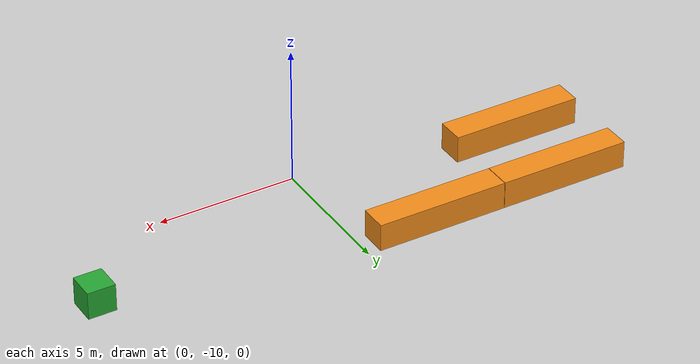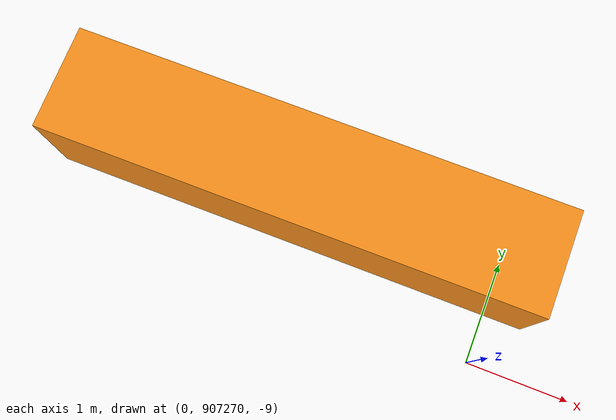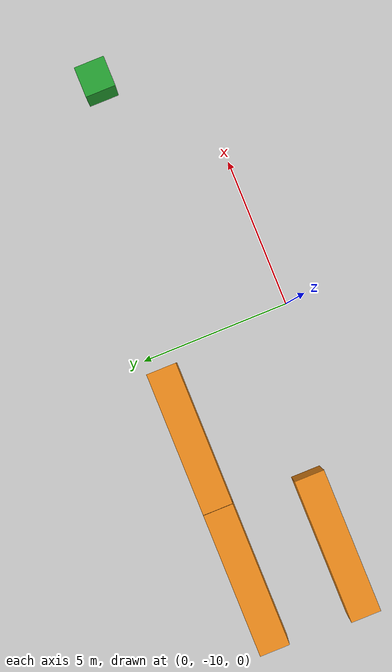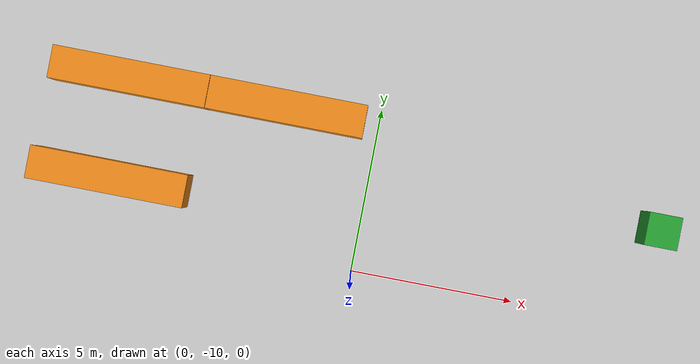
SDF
<sdf version="1.7">
 <world name="default">
  <light name="sun" type="directional">
   <pose>0 0 10 0 -0 0</pose>
   <diffuse>0.8 0.8 0.8 1</diffuse>
   <specular>0.2 0.2 0.2 1</specular>
   <attenuation>
    <range>1000</range>
    <constant>0.9</constant>
    <linear>0.01</linear>
    <quadratic>0.001</quadratic>
   </attenuation>
   <direction>-0.5 0.1 -0.9</direction>
   <spot><inner_angle>0</inner_angle><outer_angle>0</outer_angle><falloff>0</falloff></spot>
  </light>
  <model name="ground_plane">
   <static>1</static>
   <link name="link">
    <collision name="collision">
     <geometry><plane><normal>0 0 1</normal><size>100 100</size></plane></geometry>
     <surface>
      <contact><collide_bitmask>65535</collide_bitmask></contact>
      <friction><ode><mu>100</mu><mu2>50</mu2></ode></friction>
     </surface>
    </collision>
    <visual name="visual">
     <cast_shadows>0</cast_shadows>
     <geometry><plane><normal>0 0 1</normal><size>100 100</size></plane></geometry>
     <material>
      <script><uri>file://media/materials/scripts/gazebo.material</uri><name>Gazebo/Grey</name></script>
     </material>
    </visual>
   </link>
  </model>
  <gravity>0 0 -9.8</gravity>
  <magnetic_field>6e-06 2.3e-05 -4.2e-05</magnetic_field>
  <atmosphere type="adiabatic"/>
  <physics type="ode">
   <max_step_size>0.001</max_step_size>
   <real_time_factor>1</real_time_factor>
   <real_time_update_rate>1000</real_time_update_rate>
  </physics>
  <scene><ambient>0.4 0.4 0.4 1</ambient><background>0.7 0.7 0.7 1</background><shadows>1</shadows></scene>
  <spherical_coordinates>
   <surface_model>EARTH_WGS84</surface_model>
   <latitude_deg>0</latitude_deg>
   <longitude_deg>0</longitude_deg>
   <elevation>0</elevation>
   <heading_deg>0</heading_deg>
  </spherical_coordinates>
  <model name="unit_box">
   <static>1</static>
   <pose>8.88672 -6.98866 0.499995 0 1e-05 0</pose>
   <link name="link">
    <inertial>
     <mass>1</mass>
     <inertia>
      <ixx>0.166667</ixx>
      <ixy>0</ixy>
      <ixz>0</ixz>
      <iyy>0.166667</iyy>
      <iyz>0</iyz>
      <izz>0.166667</izz>
     </inertia>
    </inertial>
    <collision name="collision"><geometry><box><size>1 1 1</size></box></geometry></collision>
    <visual name="visual">
     <geometry><box><size>1 1 1</size></box></geometry>
     <material>
      <script><name>Gazebo/Green</name><uri>file://media/materials/scripts/gazebo.material</uri></script>
     </material>
    </visual>
   </link>
  </model>
  <model name="unit_box_clone">
   <static>1</static>
   <pose>-7.60212 -5.47627 0.498292 0 -0.000716 9e-06</pose>
   <link name="link">
    <inertial>
     <mass>1</mass>
     <inertia>
      <ixx>0.166667</ixx>
      <ixy>0</ixy>
      <ixz>0</ixz>
      <iyy>0.166667</iyy>
      <iyz>0</iyz>
      <izz>0.166667</izz>
     </inertia>
    </inertial>
    <collision name="collision"><geometry><box><size>4.76915 1 1</size></box></geometry></collision>
    <visual name="visual">
     <geometry><box><size>4.76915 1 1</size></box></geometry>
     <material>
      <script><name>Gazebo/Orange</name><uri>file://media/materials/scripts/gazebo.material</uri></script>
     </material>
    </visual>
   </link>
  </model>
  <model name="unit_box_clone_clone">
   <static>1</static>
   <pose>-7.69353 -8.53314 0.498292 0 0.000716 -9e-06</pose>
   <link name="link">
    <inertial>
     <mass>1</mass>
     <inertia>
      <ixx>0.166667</ixx>
      <ixy>0</ixy>
      <ixz>0</ixz>
      <iyy>0.166667</iyy>
      <iyz>0</iyz>
      <izz>0.166667</izz>
     </inertia>
    </inertial>
    <collision name="collision"><geometry><box><size>4.76915 1 1</size></box></geometry></collision>
    <visual name="visual">
     <geometry><box><size>4.76915 1 1</size></box></geometry>
     <material>
      <script><name>Gazebo/Orange</name><uri>file://media/materials/scripts/gazebo.material</uri></script>
     </material>
    </visual>
   </link>
  </model>
  <model name="unit_box_clone_clone_clone">
   <static>1</static>
   <pose>-2,907271 -8.5326 0.498292 0 0.000716 9e-06</pose>
   <link name="link">
    <inertial>
     <mass>1</mass>
     <inertia>
      <ixx>0.166667</ixx>
      <ixy>0</ixy>
      <ixz>0</ixz>
      <iyy>0.166667</iyy>
      <iyz>0</iyz>
      <izz>0.166667</izz>
     </inertia>
    </inertial>
    <collision name="collision"><geometry><box><size>4.76915 1 1</size></box></geometry></collision>
    <visual name="visual">
     <geometry><box><size>4.76915 1 1</size></box></geometry>
     <material>
      <script><name>Gazebo/Orange</name><uri>file://media/materials/scripts/gazebo.material</uri></script>
     </material>
    </visual>
   </link>
  </model>
  <model name="unit_box_clone_clone_clone_clone">
   <static>1</static>
   <pose>-2.8233 -5.47668 0.498292 0 -0.000716 -9e-06</pose>
   <link name="link">
    <inertial>
     <mass>1</mass>
     <inertia>
      <ixx>0.166667</ixx>
      <ixy>0</ixy>
      <ixz>0</ixz>
      <iyy>0.166667</iyy>
      <iyz>0</iyz>
      <izz>0.166667</izz>
     </inertia>
    </inertial>
    <collision name="collision"><geometry><box><size>4.76915 1 1</size></box></geometry></collision>
    <visual name="visual">
     <geometry><box><size>4.76915 1 1</size></box></geometry>
     <material>
      <script><name>Gazebo/Orange</name><uri>file://media/materials/scripts/gazebo.material</uri></script>
     </material>
    </visual>
   </link>
  </model>
 </world>
</sdf>
